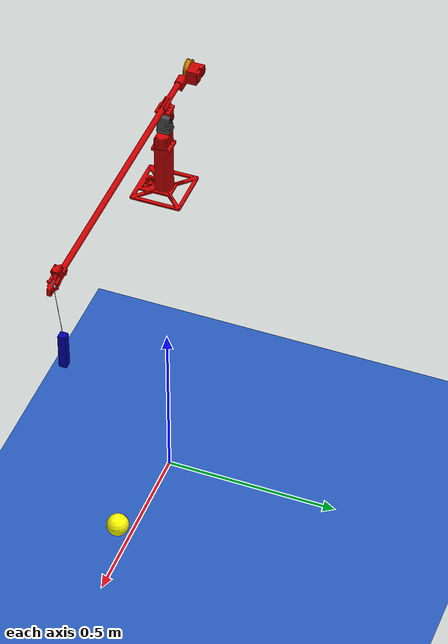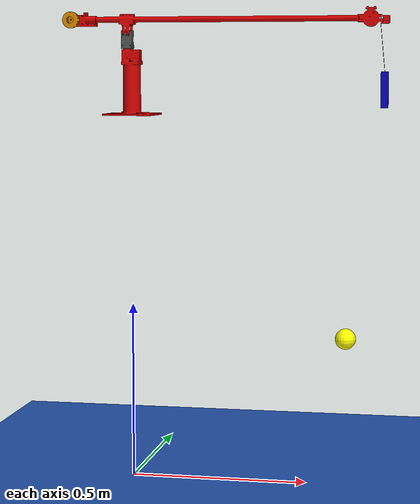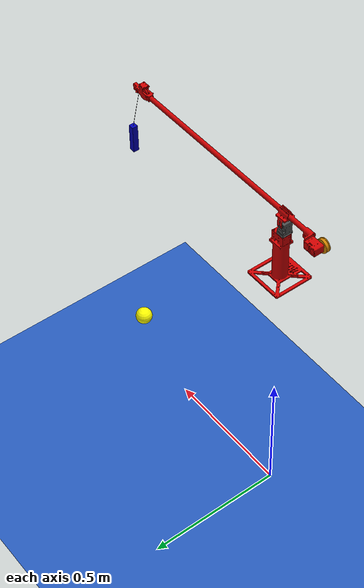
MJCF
<mujoco model="Mini Crane">
  <include file="../common.xml"/>
  <include file="minicrane_payload.xml" />

  <size memory="1M"/>

  <custom>
    <!-- agent -->
    <numeric name="agent_planner" data="0" />
    <numeric name="agent_horizon" data="0.625" />
    <numeric name="agent_timestep" data="0.01" />
    <numeric name="agent_policy_width" data="0.0035" />
    <numeric name="sampling_spline_points" data="6" />
    <numeric name="sampling_exploration" data="0.1" />
    <numeric name="sampling_trajectories" data="40" />
    <numeric name="sampling_representation" data="1" />
    <!-- parameter -->
    <numeric name="residual_GoalX" data="0 -0.8 0.8" />
    <numeric name="residual_GoalY" data="-0.7 -0.8 0.8" />
    <numeric name="residual_GoalZ" data="1.0 0 1.5" />
    <numeric name="residual_ROSTime" data="0.0 0.0 1e10" />

  </custom>

  <worldbody>

    <!-- define a yellow target for crane's payload to follow -->
    <body name="target" mocap="true" pos="0.6 0.1 0.4">
      <geom name="target" type="sphere" size="0.03" rgba="1 1 0 1"/>
      <light name="target_light" diffuse="0.7 0.7 0.7" pos="0 0 0.5"/>
    </body>

  </worldbody>

  <!-- disable collision between payload and the yellow target -->
  <!-- https://github.com/google-deepmind/mujoco/issues/104 -->
  <contact>
        <exclude name="exclude_2_body_0" body1="target" body2="payload"/>
  </contact>

  <sensor>
    <!-- cost -->
    <user name="Distance" dim="1" user="2 2000 0 2000 0.04" />
    <user name="Control" dim="3" user="0 0 0.0 100.0"/>
    <user name="Orientation" dim="4" user="0 20.5 0.0 100.0"/>
    <user name="Angular_acc" dim="3" user="0 100 0.0 200.0"/>
    <user name="Lin_vel" dim="9" user="0 0 0.0 100.0"/>

    <!-- use this for hoist control-->
    <!-- user name="Lin_vel" dim="10" user="0 10 0.0 100.0"/ -->

    <!-- trace -->
    <framepos name="trace0" objtype="site" objname="p_cg"/>

    <!-- residual -->
    <framepos name="p_pos" objtype="site" objname="p_cg"/>
    <framelinvel name="boom_vel" objtype="site" objname="tip"/>
    <!-- framepos name="target" objtype="geom" objname="target"/ -->
    <framequat name="p_quat" objtype="site" objname="p_cg"/>
    <frameangacc name="angle_acc" objtype="site" objname="p_cg"/>

  </sensor>

</mujoco>

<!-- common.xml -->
<mujoco>

    <visual>
        <headlight ambient=".4 .4 .4" diffuse=".8 .8 .8" specular="0.1 0.1 0.1"/>
        <map znear=".01"/>
        <quality shadowsize="2048"/>
        <global elevation="-15"/>
    </visual>

    <asset>
        <texture name="blue_grid" type="2d" builtin="checker" rgb1=".02 .14 .44" rgb2=".27 .55 1" width="300" height="300" mark="edge" markrgb="1 1 1"/>
        <material name="blue_grid" texture="blue_grid" texrepeat="1 1" texuniform="true" reflectance=".2"/>

        <texture name="grey_grid" type="2d" builtin="checker" rgb1=".26 .26 .26" rgb2=".6 .6 .6" width="300" height="300" mark="edge" markrgb="1 1 1"/>
        <material name="grey_grid" texture="grey_grid" texrepeat="1 1" texuniform="true" reflectance=".2"/>
        <texture name="skybox" type="skybox" builtin="gradient" rgb1=".66 .79 1" rgb2=".9 .91 .93" width="800" height="800"/>

        <material name="self" rgba=".7 .5 .3 1"/>
        <material name="self_default" rgba=".7 .5 .3 1"/>
        <material name="self_highlight" rgba="0 .5 .3 1"/>
        <material name="effector" rgba=".7 .4 .2 1"/>
        <material name="effector_default" rgba=".7 .4 .2 1"/>
        <material name="effector_highlight" rgba="0 .5 .3 1"/>
        <material name="decoration" rgba=".2 .6 .3 1"/>
        <material name="eye" rgba="0 .2 1 1"/>
        <material name="target" rgba=".6 .3 .3 1"/>
        <material name="target_default" rgba=".6 .3 .3 1"/>
        <material name="target_highlight" rgba=".6 .3 .3 .4"/>
        <material name="site" rgba=".5 .5 .5 .3"/>
    </asset>

    <size memory="1M"/>

    <statistic extent="0.4" center="0.3 0.1 0"/>

    <visual>
        <quality shadowsize="8192"/>
        <global azimuth="180" elevation="-30"/>
    </visual>

    <default>
        <geom friction="1.0"/>
    </default>

    <compiler angle="radian" autolimits="true"/>

    <asset>
        <mesh name="apple" file="../../shared_assets/apple/apple.obj" />
        <mesh name="apple_contact0" file="../../shared_assets/apple/contact0.stl"  />
        <mesh name="apple_contact1" file="../../shared_assets/apple/contact1.stl"  />

        <mesh name="doorknob" file="../../shared_assets/doorknob/doorknob.obj" />

        <mesh name="flashlight" file="../../shared_assets/flashlight/flashlight.obj" />
        <mesh name="flashlight_contact0" file="../../shared_assets/flashlight/contact0.stl"  />
        <mesh name="flashlight_contact1" file="../../shared_assets/flashlight/contact1.stl"  />

        <mesh name="hammer" file="../../shared_assets/hammer/hammer.obj" />
        <mesh name="hammer_contact0" file="../../shared_assets/hammer/contact0.stl"  />
        <mesh name="hammer_contact1" file="../../shared_assets/hammer/contact1.stl"  />

        <mesh name="phone" file="../../shared_assets/phone/phone.obj" />
        <mesh name="phone_contact0" file="../../shared_assets/phone/contact0.stl"  />
        <mesh name="phone_contact1" file="../../shared_assets/phone/contact1.stl"  />
        <mesh name="phone_contact2" file="../../shared_assets/phone/contact2.stl"  />

        <mesh name="stapler" file="../../shared_assets/stapler/stapler.obj" />
        <mesh name="stapler_contact0" file="../../shared_assets/stapler/contact0.stl"  />
        <mesh name="stapler_contact1" file="../../shared_assets/stapler/contact1.stl"  />
        <mesh name="stapler_contact2" file="../../shared_assets/stapler/contact2.stl"  />
        <mesh name="stapler_contact3" file="../../shared_assets/stapler/contact3.stl"  />
        <mesh name="stapler_contact4" file="../../shared_assets/stapler/contact4.stl"  />

        <mesh name="waterbottle" file="../../shared_assets/waterbottle/waterbottle.obj" />
        <mesh name="waterbottle_contact0" file="../../shared_assets/waterbottle/contact0.stl"  />
        <mesh name="waterbottle_contact1" file="../../shared_assets/waterbottle/contact1.stl"  />
    </asset>

</mujoco>

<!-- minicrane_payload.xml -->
<mujoco model="mini_crane_mujoco">
  <option integrator="implicitfast"/>
  <compiler angle="radian" meshdir="mesh/"/>

  <asset>
    <mesh name="base_link" file="base_link.stl" scale="0.001 0.001 0.001"/> <!-- conversion for autocad size -->
    <mesh name="boom_with_mount_2" file="boom_with_mount_2.stl" scale="0.001 0.001 0.001"/>
    <mesh name="winch_pulley_1" file="winch_pulley_1.stl" scale="0.001 0.001 0.001"/>
    <mesh name="luff_1" file="luff_1.stl" scale="0.001 0.001 0.001"/>
  </asset>

  <worldbody>
    <light name="light" pos="0 0 6"/>
    <camera name="fixed" pos="0 -4 1" zaxis="0 -1 0"/>
    <geom name="floor" pos="0 0 0" size="4 4 .2" type="plane" rgba=".5 .5 .5 1" material="blue_grid"/>
    <body name="base" pos="0 0 1.04">   <!-- was 0 0 0.5-->
      <geom type="mesh" contype="0" conaffinity="0" group="1" density="0" rgba="0.8 0 0 1" mesh="base_link"/>
      <!-- geom type="mesh" rgba="0.7 0.7 0.7 1" mesh="base_link"/ -->
      <body name="luff_1" pos="-0.012099 1e-06 0.186">
        <inertial pos="1.5589e-07 -0.000540527 0.0277155" mass="0.357116" diaginertia="0.000108 9.4e-05 5.9e-05"/>
        <joint name="Revolute 1" pos="0 0 0" axis="0 0 1"/>
        <geom pos="0.012099 -1e-06 -0.186" type="mesh" contype="0" conaffinity="0" group="1" density="0" rgba="0.3 0.3 0.3 1" mesh="luff_1"/>
        <!--geom pos="0.012099 -1e-06 -0.186" type="mesh" rgba="0.7 0.7 0.7 1" mesh="luff_1"/ -->
        <body name="boom_with_mount_2" pos="0 -0.019 0.0405">
          <inertial pos="0.173524 0.0273527 0.0402041" quat="-0.0852226 0.698002 -0.10012 0.703922" mass="1.17793" diaginertia="0.1445 0.144446 0.000254894"/>
          <joint name="Revolute 2" pos="0 0 0" axis="0 -1 0" range="-1.22173 1.5708" actuatorfrcrange="-100 100"/>
          <!-- joint name="Revolute 2" pos="0 0 0" axis="0 -1 0"/ -->
          <geom pos="0.012099 0.018999 -0.2265" quat="1 0 0 0" type="mesh" contype="0" conaffinity="0" group="1" density="0" rgba="0.8 0 0 1" mesh="boom_with_mount_2"/>
          <!-- geom pos="0.012099 0.018999 -0.2265" quat="1 0 0 0" type="mesh" rgba="0.7 0.7 0.7 1" mesh="boom_with_mount_2"/ -->
          <body name="winch_pulley_1" pos="-0.16475 0.023982 0.040989">
            <inertial pos="5.6472e-08 -0.00477244 -6.6746e-06" quat="0.707107 0 0 0.707107" mass="0.130263" diaginertia="3.6e-05 2e-05 2e-05"/>
            <joint name="Revolute 3" pos="0 0 0" axis="0 -1 0"/>
            <geom pos="0.176849 -0.004983 -0.267489" quat="1 0 0 0" type="mesh" contype="0" conaffinity="0" group="1" density="0" rgba="0.8 0.5 0 1" mesh="winch_pulley_1"/>
            <!-- geom pos="0.176849 -0.004983 -0.267489" quat="1 0 0 0" type="mesh" rgba="0.7 0.7 0.7 1" mesh="winch_pulley_1"/ -->
          </body> <!-- winch pulley -->

          <body name="boom_front_end" pos="0.71 0.023982 0.040989" >
              <site name="tip" pos="0 -0.004983 0" size="0.01" rgba="0.8 0.8 0.8 1"/>
          </body>

        </body> <!-- boom -->
      </body> <!-- luff -->
    </body> <!-- base -->

    <body name="payload" pos="0.71 0.024 1.112"> <!-- was 0.71 0.024 0.6-->
      <joint type="free" name="payload-joint"/>
      <geom name="payload_geom" type="box" size=".01 .01 .05" rgba="0 0 0.7 1" condim="3" contype="1" conaffinity="1" mass="0.02"/>
      <site name="end" pos="0 0 .05" size="0.001" rgba="0 1 0 1"/>
      <site name="p_cg" pos="0 0 0"/>
    </body> <!-- payload -->

    <!-- Table -->

  </worldbody>

  <tendon>
    <spatial name="cable" limited="true" range=".01 .2 " width="0.0005" damping="0.0000000000000001">
      <site site="tip"/>
      <site site="end"/>
    </spatial>
  </tendon>

    <actuator>
    <intvelocity name="slew-velocity" joint="Revolute 1" actrange="-3.1 3.1" ctrllimited="true" ctrlrange="-.2 .2" kp="500" kv="15"/>
    <intvelocity name="luff-velocity" joint="Revolute 2" actrange="-0.8 0.8" ctrllimited="true" ctrlrange="-.2 .2" kp="500" kv="15"/>
    <intvelocity name="hoist-velocity" joint="Revolute 3" actrange="-100 100" ctrllimited="true" ctrlrange="-10 10"  kp="500" kv="15"/>
  </actuator>

</mujoco>
